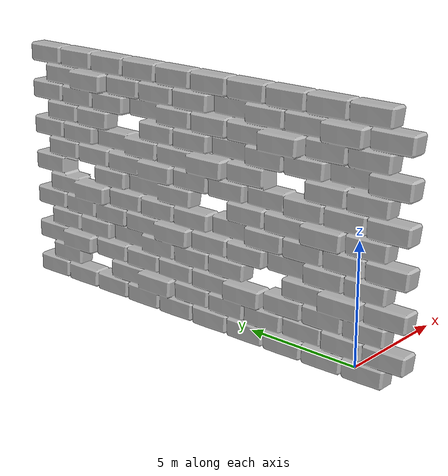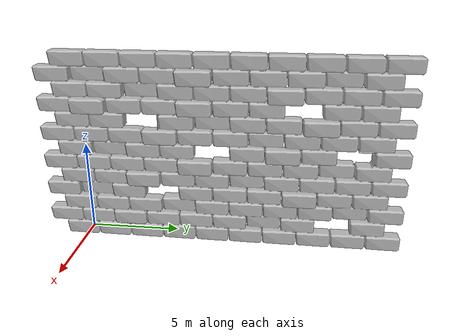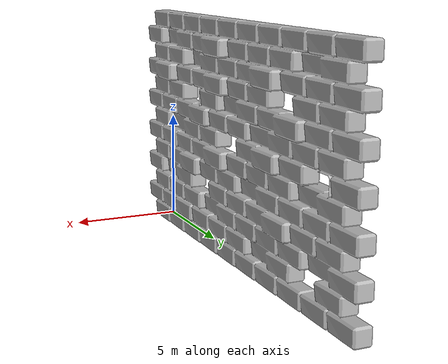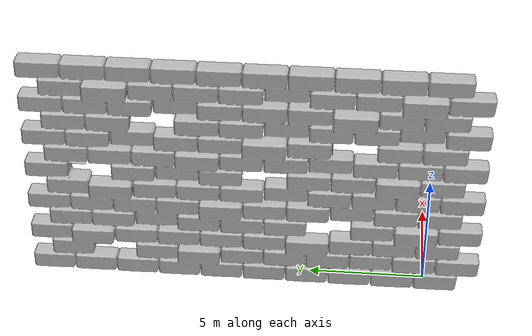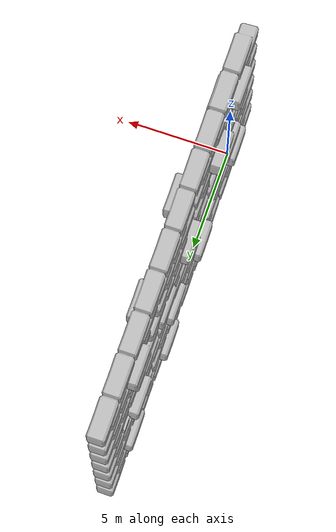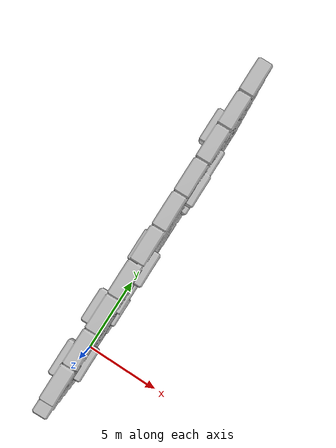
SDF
<?xml version="1.0" ?>
<sdf version="1.7">
  <model name="uneven_wall">
    <static>true</static>

    <link name="single_wall">
      <collision name="single_wall">
        <pose>0 0 0 1.57 0 0</pose>
        <geometry>
          <mesh>
            <uri>model://uneven_wall/meshes/jenga_wall.obj</uri>
            <scale>.4 .4 .4</scale>
          </mesh>
        </geometry>
      </collision>

      <visual name="single_wall">
        <cast_shadows>true</cast_shadows>
        <pose>0 0 0 1.57 0 0</pose>
        <geometry>
          <mesh>
            <uri>model://uneven_wall/meshes/jenga_wall.obj</uri>
            <scale>.4 .4 .4</scale>
          </mesh>
        </geometry>
      </visual>
    </link>

  </model>
</sdf>
